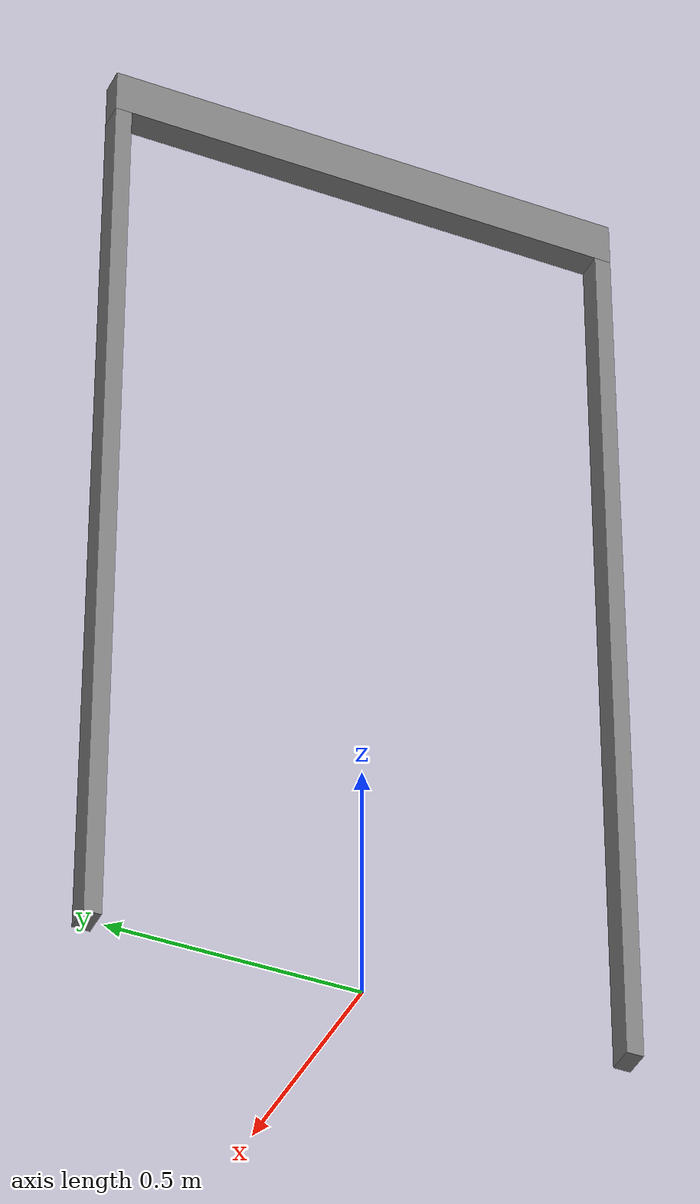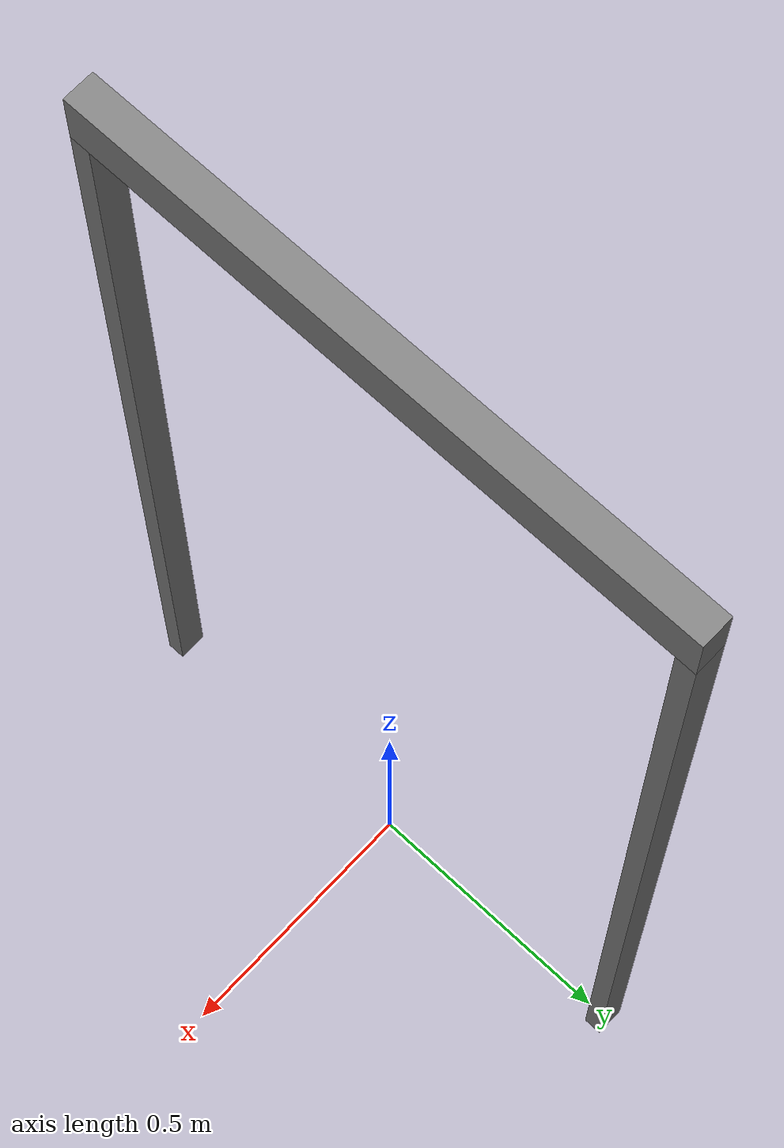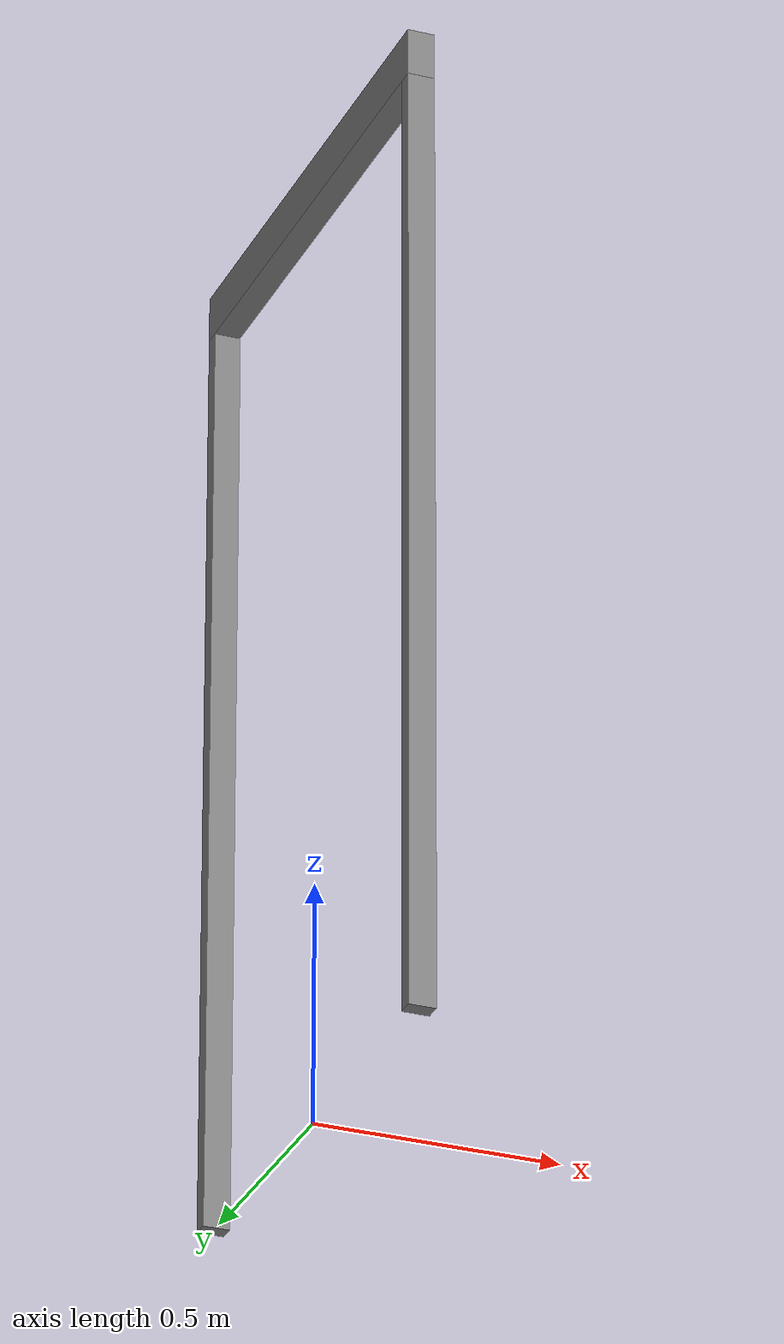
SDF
<?xml version="1.0" ?>
<sdf version="1.4">
    <model name='sliding_door_frame_55_1100_2090'>
      <link name='link'>
        <inertial>
          <mass>50</mass>
          <inertia>
            <ixx>1</ixx>
            <ixy>0</ixy>
            <ixz>0</ixz>
            <iyy>1</iyy>
            <iyz>0</iyz>
            <izz>1</izz>
          </inertia>
        </inertial>
        <visual name='right_frame'>
          <pose>0 0.5325 0.995 0 0 0</pose>
          <geometry>
            <box>
              <size>0.055 0.035 1.990</size>
            </box>
          </geometry>
          <material>
            <!-- hsr_color/white -->
            <name>white</name>
            <ambient>1 1 1 1</ambient>
            <diffuse>0.5 0.5 0.5 1</diffuse>
            <specular>0 0 0 1</specular>
            <emissive>0 0 0 1</emissive>
            <shading>gouraud</shading>
            <receive_shadows>on</receive_shadows>
          </material>
        </visual>
        <collision name='collision_right_frame'>
          <pose>0 0.5325 0.995 0 0 0</pose>
          <geometry>
            <box>
              <size>0.055 0.035 1.990</size>
            </box>
          </geometry>
          <max_contacts>10</max_contacts>
          <surface>
            <bounce/>
            <friction>
              <ode/>
            </friction>
            <contact>
              <ode/>
            </contact>
          </surface>
        </collision>
        <visual name='left_frame'>
          <pose>0 -0.5325 0.995 0 0 0</pose>
          <geometry>
            <box>
              <size>0.055 0.035 1.990</size>
            </box>
          </geometry>
          <material>
            <!-- hsr_color/white -->
            <name>white</name>
            <ambient>1 1 1 1</ambient>
            <diffuse>0.5 0.5 0.5 1</diffuse>
            <specular>0 0 0 1</specular>
            <emissive>0 0 0 1</emissive>
            <shading>gouraud</shading>
            <receive_shadows>on</receive_shadows>
          </material>
        </visual>
        <collision name='collision_left_frame'>
          <pose>0 -0.5325 0.995 0 0 0</pose>
          <geometry>
            <box>
              <size>0.055 0.035 1.990</size>
            </box>
          </geometry>
          <max_contacts>10</max_contacts>
          <surface>
            <bounce/>
            <friction>
              <ode/>
            </friction>
            <contact>
              <ode/>
            </contact>
          </surface>
        </collision>
        <visual name='top_frame'>
          <pose>0 0 2.040 0 0 0</pose>
          <geometry>
            <box>
              <size>0.055 1.1 0.1</size>
            </box>
          </geometry>
          <material>
            <!-- hsr_color/white -->
            <name>white</name>
            <ambient>1 1 1 1</ambient>
            <diffuse>0.5 0.5 0.5 1</diffuse>
            <specular>0 0 0 1</specular>
            <emissive>0 0 0 1</emissive>
            <shading>gouraud</shading>
            <receive_shadows>on</receive_shadows>
          </material>
        </visual>
        <collision name='collision_top_frame'>
          <pose>0 0 2.040 0 0 0</pose>
          <geometry>
            <box>
              <size>0.055 1.1 0.1</size>
            </box>
          </geometry>
          <max_contacts>10</max_contacts>
          <surface>
            <bounce/>
            <friction>
              <ode/>
            </friction>
            <contact>
              <ode/>
            </contact>
          </surface>
        </collision>
        <velocity_decay>
          <linear>0</linear>
          <angular>0</angular>
        </velocity_decay>
        <self_collide>0</self_collide>
        <kinematic>0</kinematic>
        <gravity>1</gravity>
      </link>
      <static>1</static>
    </model>
</sdf>
